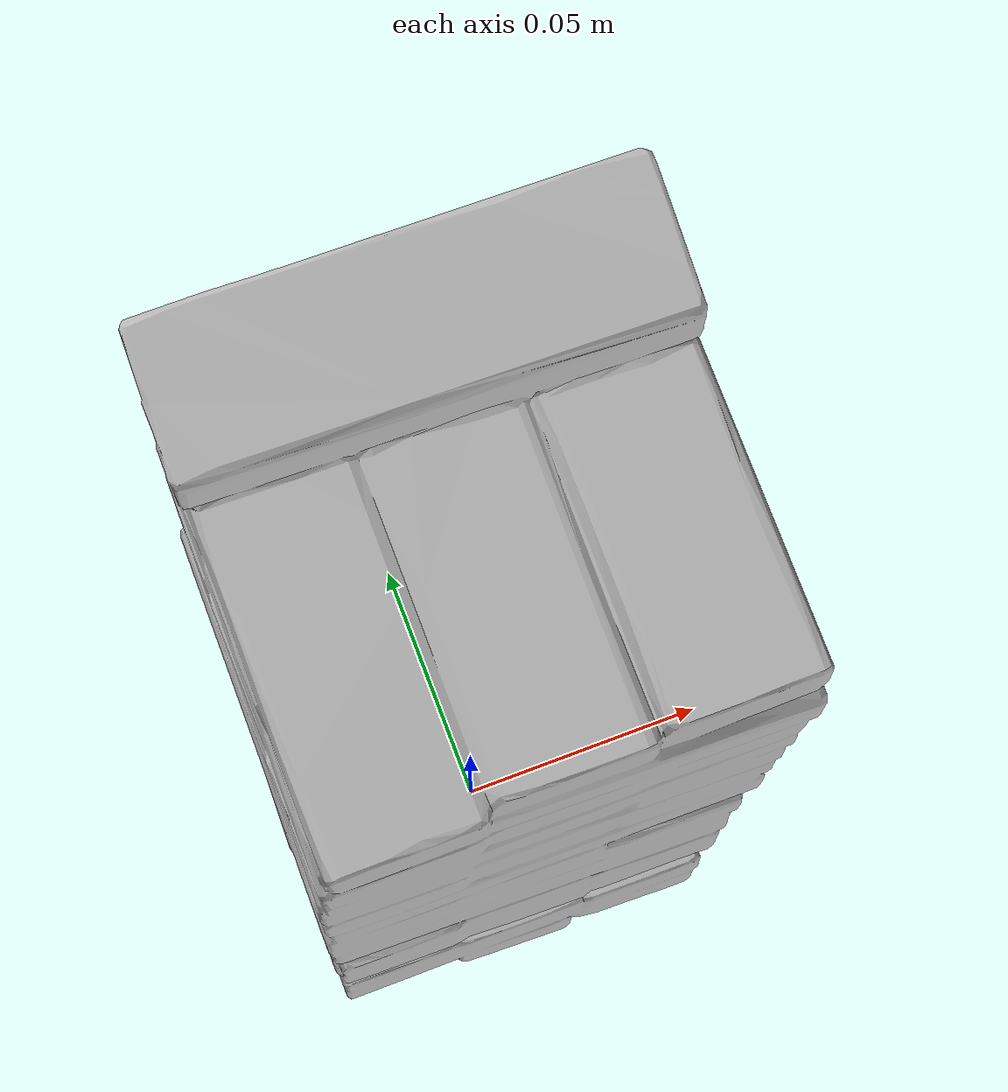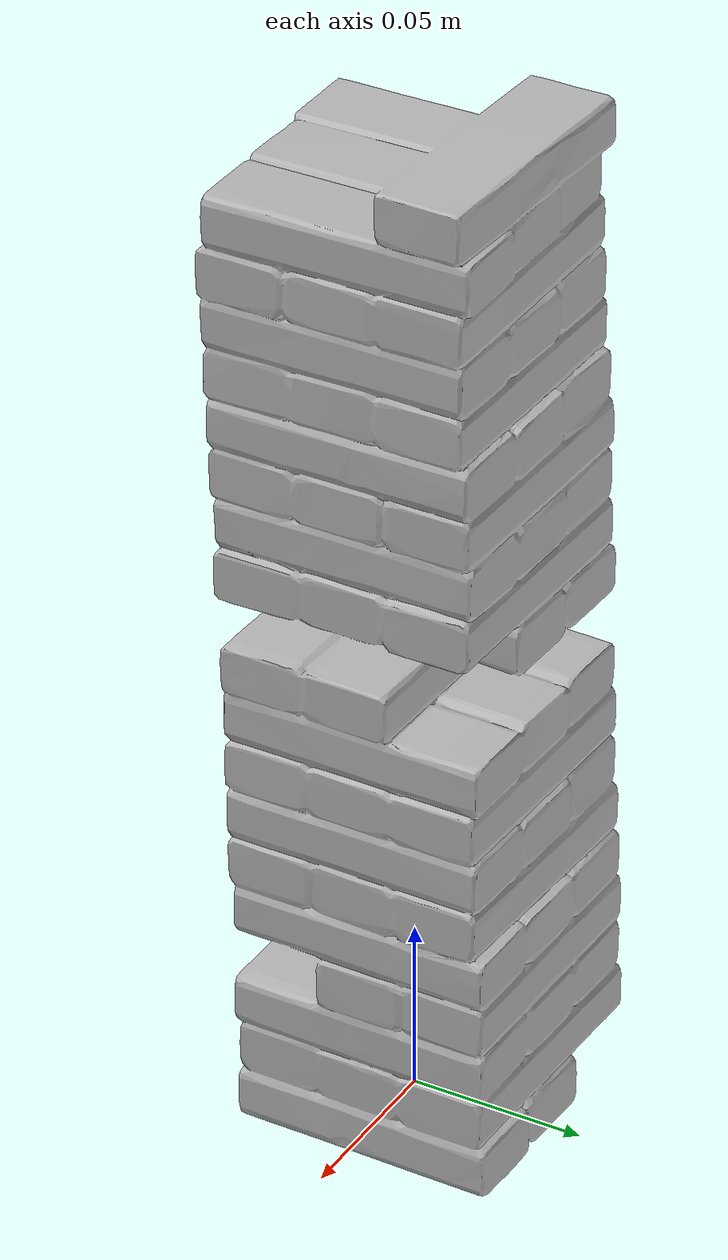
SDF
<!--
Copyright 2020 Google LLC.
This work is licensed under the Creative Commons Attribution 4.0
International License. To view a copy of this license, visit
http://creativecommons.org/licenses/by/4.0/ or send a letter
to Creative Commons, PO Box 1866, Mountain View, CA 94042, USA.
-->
<?xml version="1.0" ?>
<sdf version="1.6">
  <model name="2_of_Jenga_Classic_Game">
    <link name="link_0">
      <visual name="visual">
        <geometry>
          <mesh>
            <uri>meshes/model.obj</uri>
          </mesh>
        </geometry>
      </visual>
      <collision name="collision_0">
        <geometry>
          <mesh>
            <uri>meshes/model.obj</uri>
          </mesh>
        </geometry>
      </collision>
    </link>
  </model>
</sdf>
